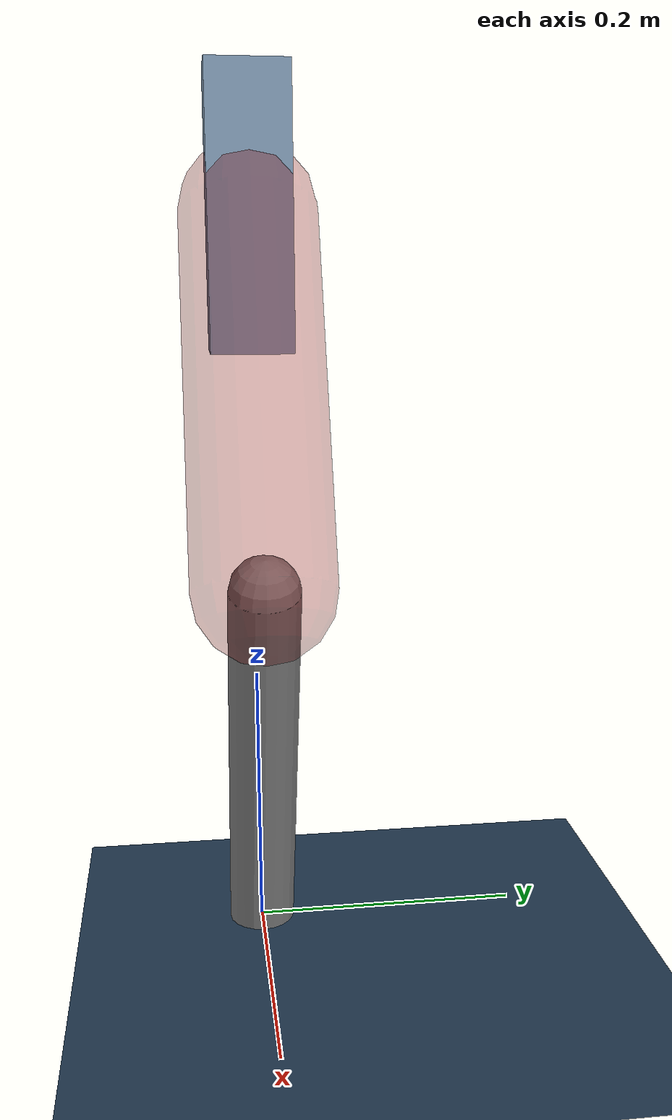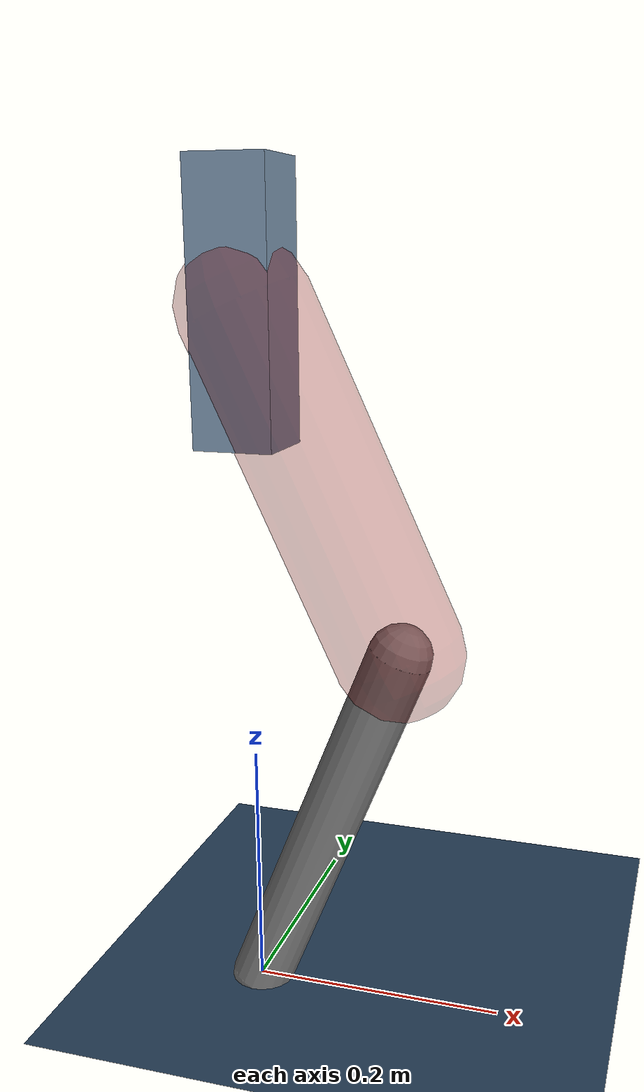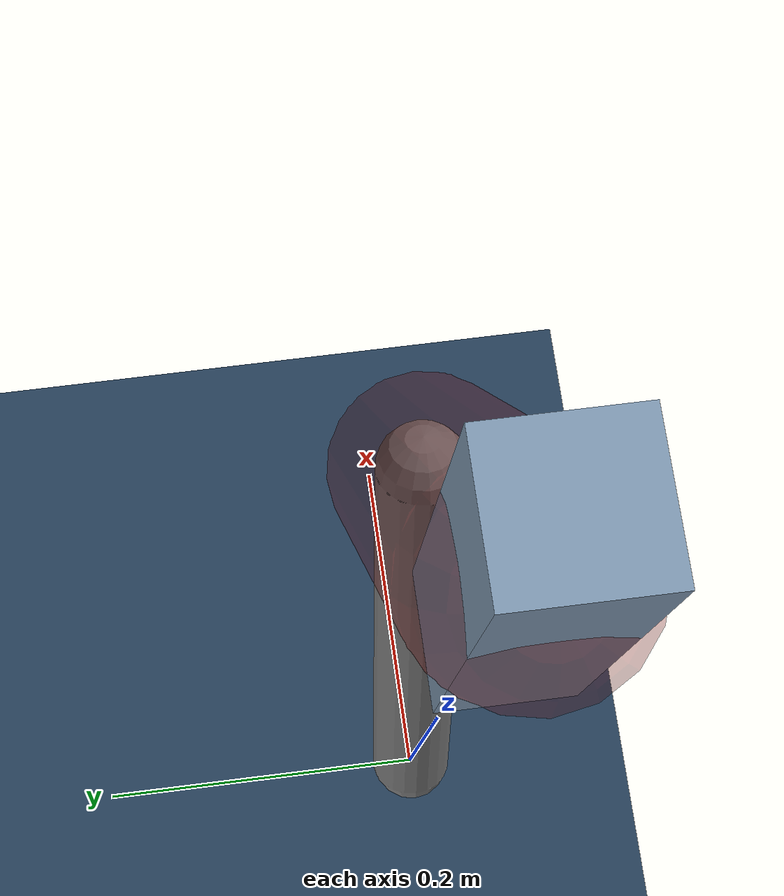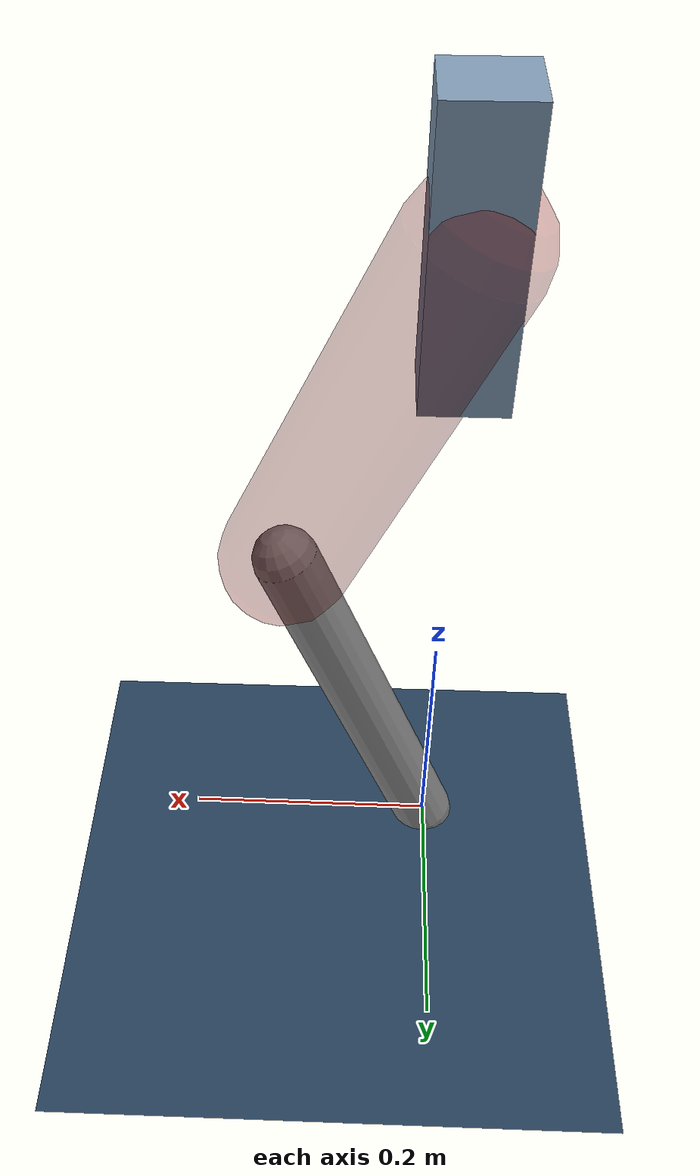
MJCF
<mujoco model="Hopper2D">
	<compiler inertiafromgeom="true" angle="radian" />
	<option timestep="0.001" integrator="implicit" cone="elliptic" solver="Newton" tolerance="1e-10" />

	<default>
		<geom contype="1" conaffinity="1" condim="3" friction="2 0.005 0.0001" solref="0.005 1" />
		<joint limited="true" damping="0.1" />
	</default>

	<asset>
		<texture name="skybox" type="skybox" builtin="gradient" rgb1=".4 .6 .8" rgb2="0 0 0" width="800" height="800" />
		<texture name="grid" type="2d" builtin="checker" rgb1=".1 .2 .3" rgb2=".2 .3 .4" width="300" height="300" mark="edge" markrgb=".2 .3 .4" />
		<material name="ground" texture="grid" texrepeat="1 1" texuniform="true" reflectance="0.1" />
		<material name="leg" rgba="0.5 0.6 0.7 1" />
	</asset>

	<worldbody>

		<geom name="floor" type="plane" size="5 5 0.25" material="ground" />

		<light directional="false" diffuse="0.8 0.8 0.8" specular="0.3 0.3 0.3" pos="0 0 2" dir="0 0 -1" />
		<light mode="targetbodycom" target="base" directional="false" diffuse="0.8 0.8 0.8" specular="0.3 0.3 0.3" pos="0 0 2" dir="0 0 -1" />

		<camera name="fixed" pos="0 -2 1" xyaxes="1 0 0 0 0 1" />
		<camera name="tracking" mode="trackcom" pos="0 -3 1" />

		<body name="root" pos="0 0 0.5455477902850302">
			<joint name="slide_x" type="slide" axis="1 0 0" range="-100 100" />
			<joint name="slide_z" type="slide" axis="0 0 1" range="0 10" />

			<body name="base" pos="0 0 0">
				<geom name="torso" type="box" size="0.03 0.03 0.1" mass="2.8259999999999996" material="leg" />

				<body name="link1" pos="0 0 0" euler="0 1.1332595216353962 0">
					<joint type="hinge" axis="0 -1 0" pos="0 0 0" name="hinge1" limited="true" range="-3.14 3.14" stiffness="0" damping="0.1" />
					<geom name="thigh" type="capsule" fromto="0 0 0 0.2771731204839668 0 0" size="0.05" rgba="0.5 0 0 0.3" mass="0.9276501132583136" />

					<body name="link2" pos="0.2771731204839668 0 0" euler="0 0.8170092376813363 0">
						<joint type="hinge" axis="0 -1 0" pos="0 0 0" name="hinge2" limited="true" range="-3.14 3.14" stiffness="0" damping="0.1" />
						<geom name="shank" type="capsule" fromto="0 0 0 0.317039001024891 0 0" size="0.025" mass="0.4972312008199128" />

					</body>
				</body>
			</body>
		</body>
	</worldbody>

	<actuator>
		<motor name="torque1" joint="hinge1" ctrlrange="-136.96455038192698 136.96455038192698" ctrllimited="true" gear="1" />
		<motor name="torque2" joint="hinge2" ctrlrange="-29.9687910508764 29.9687910508764" ctrllimited="true" gear="1" />
	</actuator>
</mujoco>
